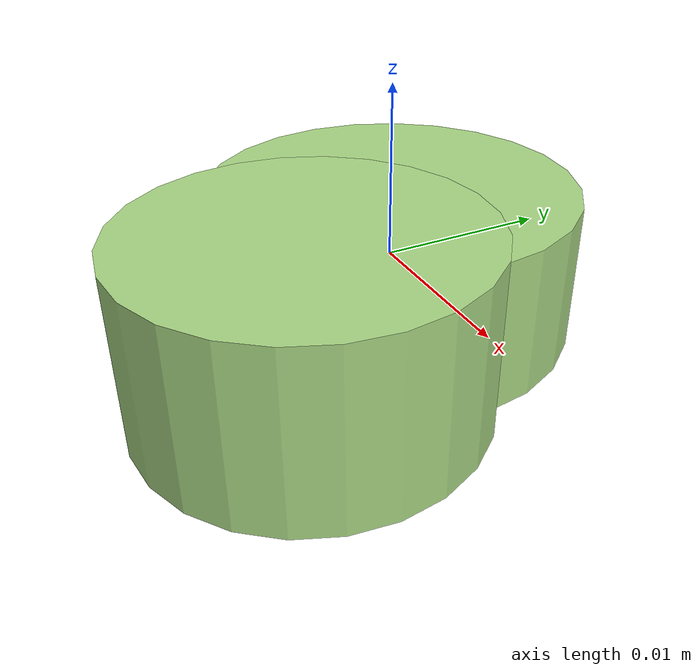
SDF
<?xml version="1.0" ?>
<!-- |    This document was autogenerated by xmacro from data/veggie_template/veggie_base.sdf.xacro  | -->
<!-- |    EDITING THIS FILE BY HAND IS NOT RECOMMENDED                                               | -->
<sdf version="1.8">
	<!-- Parameters -->
	<!-- Base -->
	<!-- Joint 0 -->
	<!-- Link 1 -->
	<!-- Joint 1 -->
	<!-- Link 2 -->
	<!-- Primitives -->
	<!-- All dimensions are half -->
	<!-- Object -->
	<model name="veggie">
		<!-- link0 -->
		<link name="link0">
			<inertial>
				<mass>0.002924846392272484</mass>
				<inertia>
					<ixx>9.80107171163723e-08</ixx>
					<ixy>0</ixy>
					<ixz>0</ixz>
					<iyy>9.80107171163723e-08</iyy>
					<iyz>0</iyz>
					<izz>1.6128091043134413e-07</izz>
				</inertia>
			</inertial>
			<visual name="link0_visual">
				<pose>0 0 0 0 0 0</pose>
				<geometry>
					<cylinder>
						<radius>0.010501587364514378</radius>
						<length>0.008441940269367154</length>
					</cylinder>
				</geometry>
				<material>
					<ambient>0.659 0.839 0.514 1</ambient>
					<diffuse>0.659 0.839 0.514 1</diffuse>
					<specular>0 0 0 0</specular>
					<emissive>0 0 0 1</emissive>
				</material>
			</visual>
			<collision name="link0_collision">
				<pose>0 0 0 0 0 0 </pose>
				<geometry>
					<cylinder>
						<radius>0.010501587364514378</radius>
						<length>0.008441940269367154</length>
					</cylinder>
				</geometry>
			</collision>
		</link>
		<!-- link1 -->
		<joint name="joint0" type="fixed">
			<pose relative_to="link0">0.0055891641408586734 -0.007542004277586358 0.0006836153461937518 0.0 0.0 0.0</pose>
			<parent>link0</parent>
			<child>link1</child>
		</joint>
		<link name="link1">
			<pose relative_to="joint0">0 0 0 0 0 0</pose>
			<inertial>
				<mass>0.002719523750284802</mass>
				<inertia>
					<ixx>8.196300991304823e-08</ixx>
					<ixy>0</ixy>
					<ixz>0</ixz>
					<iyy>8.196300991304823e-08</iyy>
					<iyz>0</iyz>
					<izz>1.211150601935653e-07</izz>
				</inertia>
			</inertial>
			<visual name="link1_visual">
				<pose>0 0 0 0 0 0</pose>
				<geometry>
					<cylinder>
						<radius>0.009437732083706848</radius>
						<length>0.00971866648367822</length>
					</cylinder>
				</geometry>
				<material>
					<ambient>0.659 0.839 0.514 1</ambient>
					<diffuse>0.659 0.839 0.514 1</diffuse>
					<specular>0 0 0 0</specular>
					<emissive>0 0 0 1</emissive>
				</material>
			</visual>
			<collision name="link1_collision">
				<pose>0 0 0 0 0 0 </pose>
				<geometry>
					<cylinder>
						<radius>0.009437732083706848</radius>
						<length>0.00971866648367822</length>
					</cylinder>
				</geometry>
			</collision>
		</link>
		<!-- link2 -->
	</model>
</sdf>
